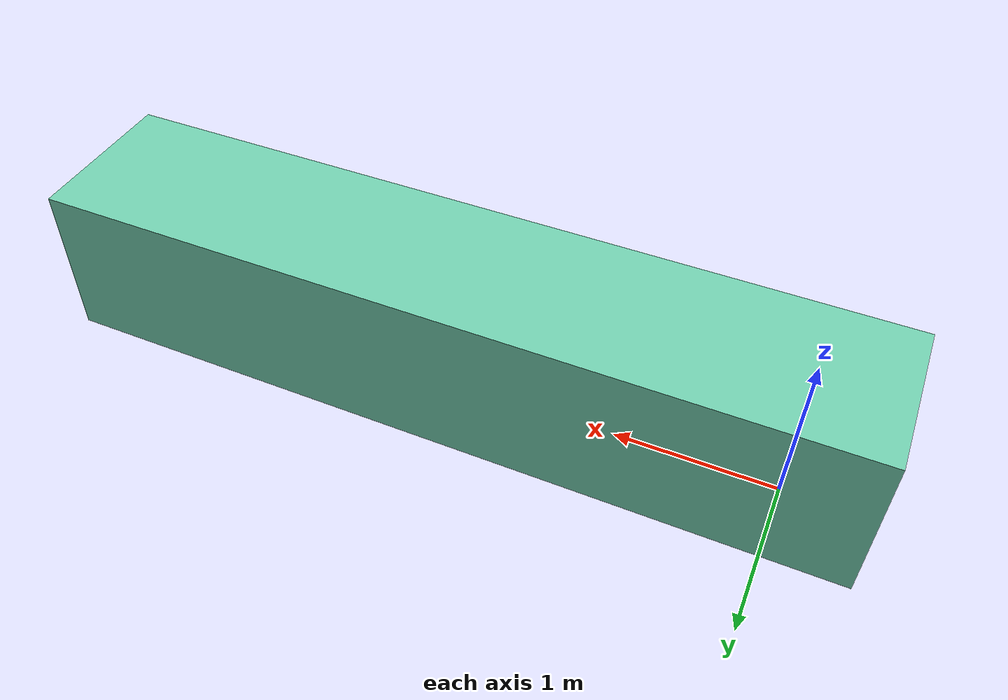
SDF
<?xml version='1.0'?>
<sdf version='1.7'>
  <model name='yesil_5'>
    <pose>2 0 0 0 -0 0</pose>
    <link name='Wall_4'>
      <collision name='Wall_4_Collision'>
        <geometry>
          <box>
            <size>5 1 1</size>
          </box>
        </geometry>
        <pose>0 0 0.5 0 -0 0</pose>
      </collision>
      <visual name='Wall_4_Visual'>
        <pose>0 0 0.5 0 -0 0</pose>
        <geometry>
          <box>
            <size>5 1 1</size>
          </box>
        </geometry>
        <material>
          <script>
            <uri>file://media/materials/scripts/gazebo.material</uri>
            <name>Gazebo/Grey</name>
          </script>
          <ambient>0.435294 0.796078 0.67451 1</ambient>
        </material>
        <meta>
          <layer>0</layer>
        </meta>
      </visual>
      <pose>0 0 0 0 -0 0</pose>
    </link>
    <static>1</static>
  </model>
</sdf>
